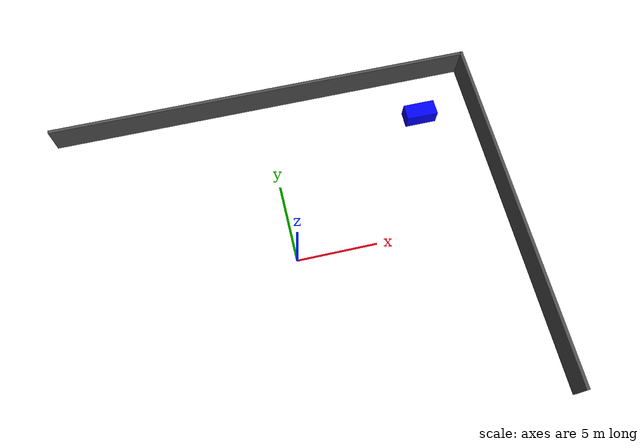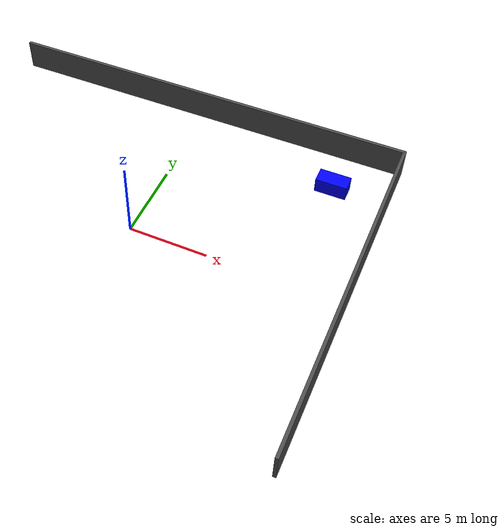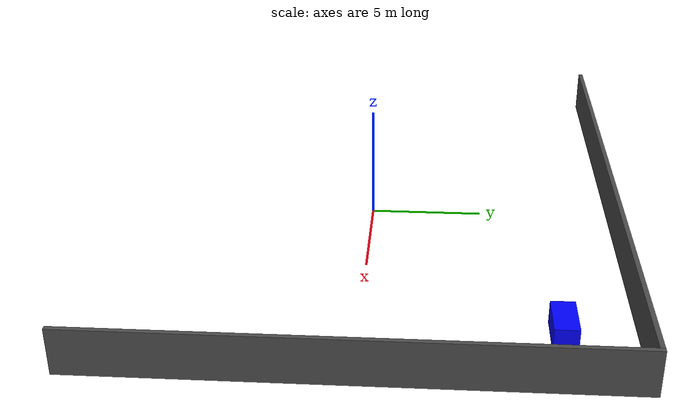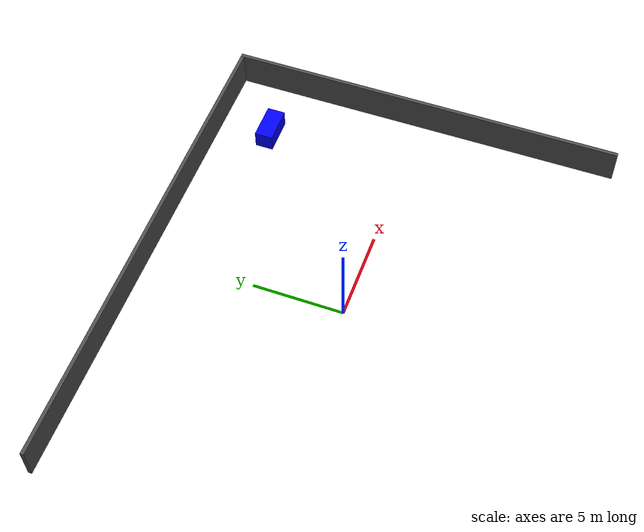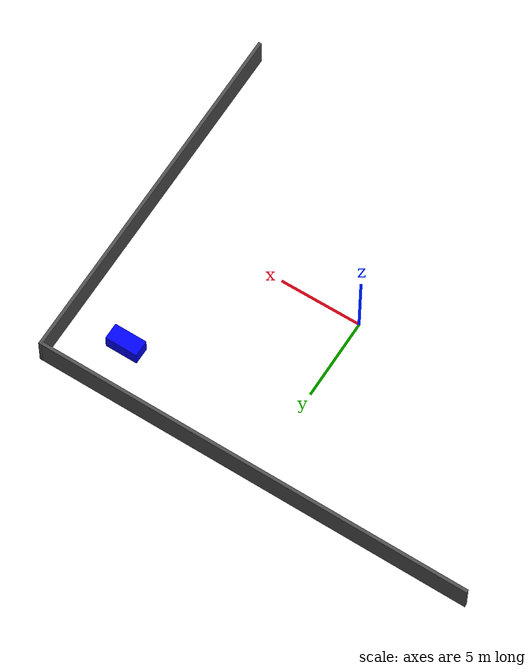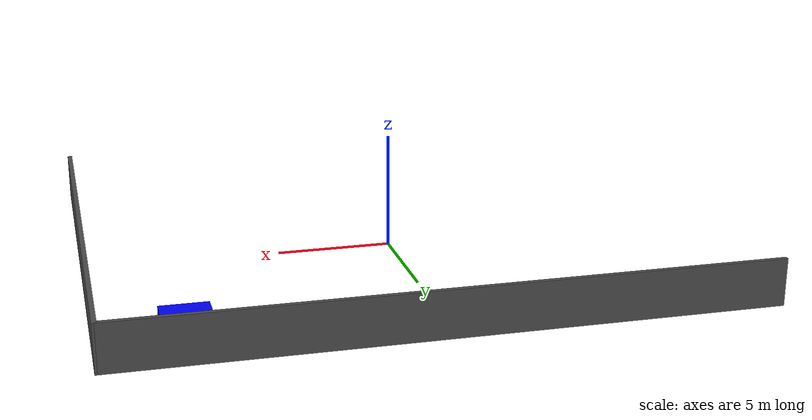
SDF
<sdf version="1.7">
 <world name="empty">
  <include><uri>https://fuel.gazebosim.org/1.0/OpenRobotics/models/Sun</uri></include>
  <model name="wall_north">
   <static>true</static>
   <pose>0 11 1 0 0 0</pose>
   <link name="link">
    <collision name="collision"><geometry><box><size>27 0.2 2</size></box></geometry></collision>
    <visual name="visual">
     <geometry><box><size>27 0.2 2</size></box></geometry>
     <material><ambient>0.3 0.3 0.3 1</ambient><diffuse>0.3 0.3 0.3 1</diffuse></material>
    </visual>
   </link>
  </model>
  <model name="wall_east">
   <static>true</static>
   <pose>13.5 0 1 0 0 0</pose>
   <link name="link">
    <collision name="collision"><geometry><box><size>0.2 22.2 2</size></box></geometry></collision>
    <visual name="visual">
     <geometry><box><size>0.2 22.2 2</size></box></geometry>
     <material><ambient>0.3 0.3 0.3 1</ambient><diffuse>0.3 0.3 0.3 1</diffuse></material>
    </visual>
   </link>
  </model>
  <model name="shelf_blue">
   <static>true</static>
   <pose>10 8 0.5 0 0 0</pose>
   <link name="link">
    <collision name="collision"><geometry><box><size>2 1 1</size></box></geometry></collision>
    <visual name="visual">
     <geometry><box><size>2 1 1</size></box></geometry>
     <material><ambient>0 0 1 1</ambient><diffuse>0 0 1 1</diffuse></material>
    </visual>
   </link>
  </model>
 </world>
</sdf>
